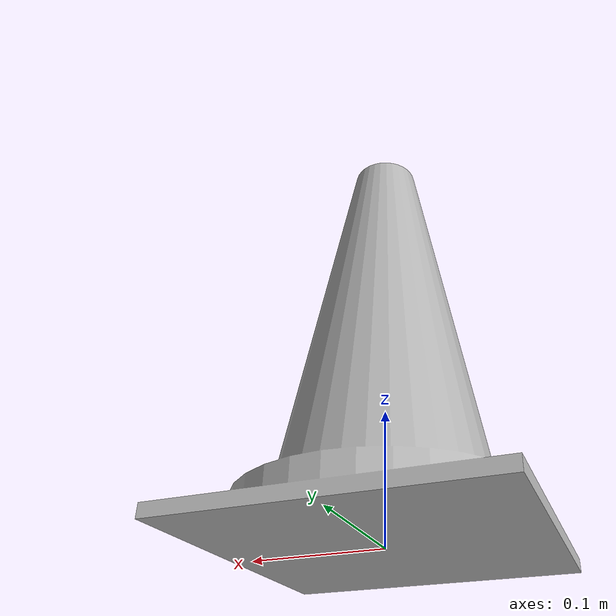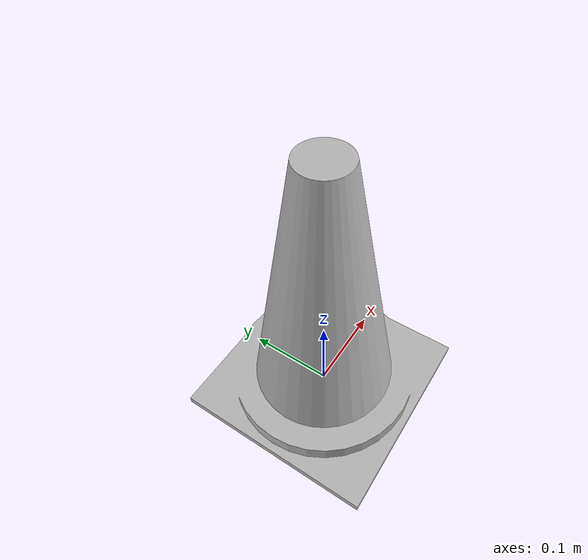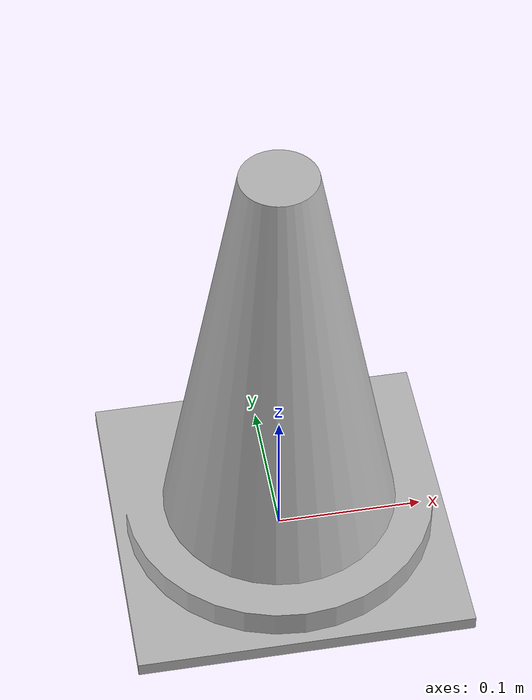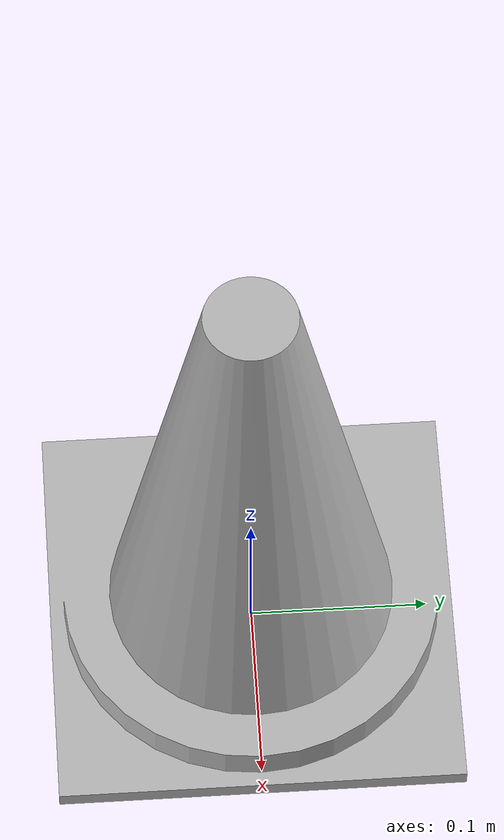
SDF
<?xml version='1.0'?>
<sdf version='1.4'>
  <model name="cone_blue">
    <link name="link">
    <collision name="collision"><geometry><box><size> 0.2 0.2 0.01</size>
             </box></geometry></collision>
      <visual name="visual">
        <geometry>
          <mesh>
            <uri>model://BlueCone.dae</uri>
            <scale>1 1 1</scale>
          </mesh>
        </geometry>
        <material>
            <script>
              <uri>model://cone_blue/materials/scripts</uri>
              <uri>model://cone_blue/materials/textures</uri>
              <name>cone_blue/Image</name>
            </script>
        </material>
      </visual>
    </link>
  </model>
</sdf>
